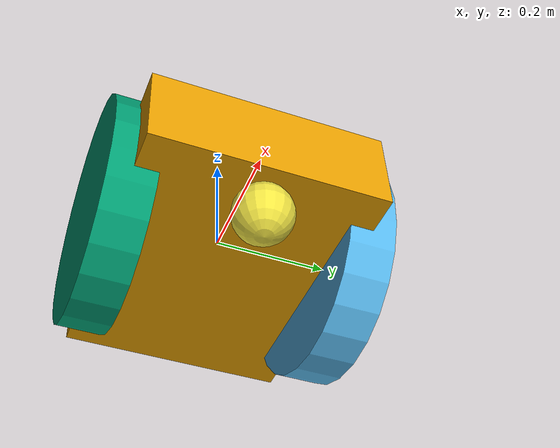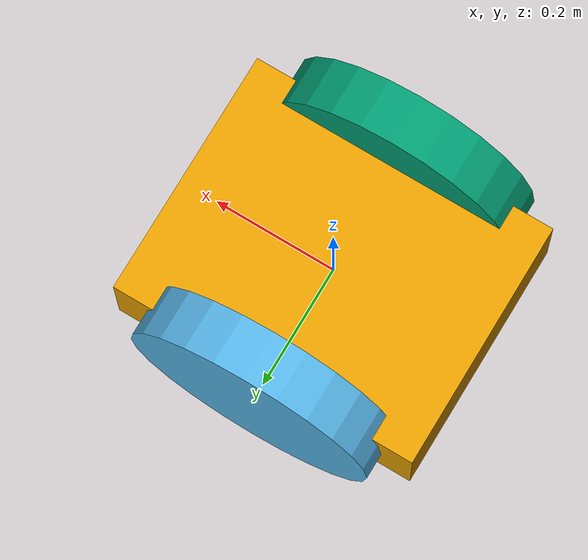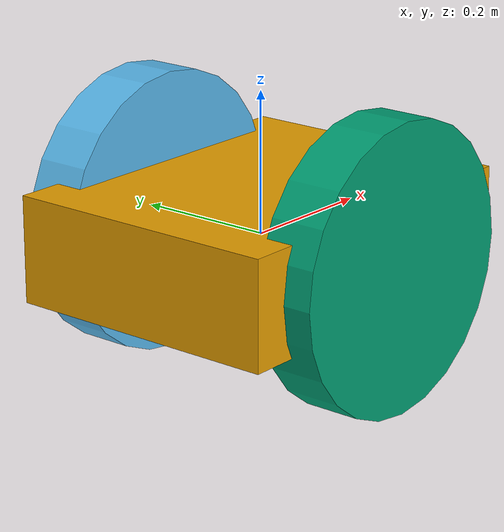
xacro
<?xml version="1.0"?>
<robot xmlns:xacro="http://www.ros.org/wiki/xacro" name="roboclaw_diff_drive">

  <!-- Xacro arguments with sensible defaults for our robot               -->
  <xacro:arg name="tcp_host"              default="192.168.68.60"/>
  <xacro:arg name="tcp_port"              default="8234"/>
  <xacro:arg name="socket_timeout"        default="0.05"/>
  <xacro:arg name="address"               default="0x80"/>

  <xacro:arg name="wheel_radius"          default="0.2"/>
  <xacro:arg name="wheel_separation"      default="0.4"/>
  <xacro:arg name="encoder_counts_per_rev" default="1000"/>
  <xacro:arg name="gear_ratio"            default="16.0"/>

  <!-- Motion strategy: duty, duty_accel, speed, speed_accel -->
  <xacro:arg name="motion_strategy"       default="duty_accel"/>
  <xacro:arg name="duty_accel_rate"       default="50000"/>
  <xacro:arg name="duty_decel_rate"       default="50000"/>
  <xacro:arg name="default_acceleration"  default="15000"/>
  <xacro:arg name="duty_max_rad_s"       default="22.5"/>
  <xacro:arg name="buffer_depth"          default="4"/>

  <xacro:arg name="auto_home_on_startup"      default="false"/>
  <xacro:arg name="position_limits_enabled"   default="false"/>

  <xacro:arg name="encoder_stuck_limit"       default="0"/>
  <xacro:arg name="encoder_runaway_limit"     default="5"/>
  <xacro:arg name="encoder_comm_fail_limit"   default="10"/>
  <xacro:arg name="encoder_max_speed_rad_s"   default="30.0"/>

  <!-- Derived properties                                                 -->
  <xacro:property name="wheel_radius"     value="$(arg wheel_radius)"/>
  <xacro:property name="wheel_separation" value="$(arg wheel_separation)"/>
  <xacro:property name="wheel_width"      value="0.08"/>
  <xacro:property name="wheel_mass"       value="1.5"/>

  <xacro:property name="base_length"      value="0.50"/>
  <xacro:property name="base_width"       value="0.40"/>
  <xacro:property name="base_height"      value="0.15"/>
  <xacro:property name="base_mass"        value="15.0"/>

  <xacro:property name="caster_radius"    value="0.05"/>
  <xacro:property name="caster_mass"      value="0.3"/>

  <!-- Links                                                              -->
  <link name="base_link">
    <visual>
      <geometry>
        <box size="${base_length} ${base_width} ${base_height}"/>
      </geometry>
    </visual>
    <collision>
      <geometry>
        <box size="${base_length} ${base_width} ${base_height}"/>
      </geometry>
    </collision>
    <inertial>
      <mass value="${base_mass}"/>
      <inertia
        ixx="${base_mass*(base_width*base_width+base_height*base_height)/12}"
        iyy="${base_mass*(base_length*base_length+base_height*base_height)/12}"
        izz="${base_mass*(base_length*base_length+base_width*base_width)/12}"
        ixy="0" ixz="0" iyz="0"/>
    </inertial>
  </link>

  <link name="left_wheel">
    <visual>
      <geometry><cylinder radius="${wheel_radius}" length="${wheel_width}"/></geometry>
    </visual>
    <collision>
      <geometry><cylinder radius="${wheel_radius}" length="${wheel_width}"/></geometry>
    </collision>
    <inertial>
      <mass value="${wheel_mass}"/>
      <inertia
        ixx="${wheel_mass*(3*wheel_radius*wheel_radius+wheel_width*wheel_width)/12}"
        iyy="${wheel_mass*(3*wheel_radius*wheel_radius+wheel_width*wheel_width)/12}"
        izz="${wheel_mass*wheel_radius*wheel_radius/2}"
        ixy="0" ixz="0" iyz="0"/>
    </inertial>
  </link>

  <link name="right_wheel">
    <visual>
      <geometry><cylinder radius="${wheel_radius}" length="${wheel_width}"/></geometry>
    </visual>
    <collision>
      <geometry><cylinder radius="${wheel_radius}" length="${wheel_width}"/></geometry>
    </collision>
    <inertial>
      <mass value="${wheel_mass}"/>
      <inertia
        ixx="${wheel_mass*(3*wheel_radius*wheel_radius+wheel_width*wheel_width)/12}"
        iyy="${wheel_mass*(3*wheel_radius*wheel_radius+wheel_width*wheel_width)/12}"
        izz="${wheel_mass*wheel_radius*wheel_radius/2}"
        ixy="0" ixz="0" iyz="0"/>
    </inertial>
  </link>

  <link name="caster_wheel">
    <visual>
      <geometry><sphere radius="${caster_radius}"/></geometry>
    </visual>
    <collision>
      <geometry><sphere radius="${caster_radius}"/></geometry>
    </collision>
    <inertial>
      <mass value="${caster_mass}"/>
      <inertia
        ixx="${2*caster_mass*caster_radius*caster_radius/5}"
        iyy="${2*caster_mass*caster_radius*caster_radius/5}"
        izz="${2*caster_mass*caster_radius*caster_radius/5}"
        ixy="0" ixz="0" iyz="0"/>
    </inertial>
  </link>

  <!-- Joints                                                             -->
  <joint name="left_wheel_joint" type="continuous">
    <parent link="base_link"/>
    <child link="left_wheel"/>
    <origin xyz="0 ${wheel_separation/2} 0" rpy="${-pi/2} 0 0"/>
    <axis xyz="0 0 1"/>
  </joint>

  <joint name="right_wheel_joint" type="continuous">
    <parent link="base_link"/>
    <child link="right_wheel"/>
    <origin xyz="0 ${-wheel_separation/2} 0" rpy="${-pi/2} 0 0"/>
    <axis xyz="0 0 1"/>
  </joint>

  <joint name="caster_wheel_joint" type="fixed">
    <parent link="base_link"/>
    <child link="caster_wheel"/>
    <origin xyz="${base_length/2-caster_radius} 0 ${-base_height/2-caster_radius}"/>
  </joint>

  <!-- ros2_control Hardware Interface                                     -->
  <ros2_control name="RoboClawSystem" type="system">
    <hardware>
      <plugin>roboclaw_hardware/RoboClawHardware</plugin>

      <param name="tcp_host">$(arg tcp_host)</param>
      <param name="tcp_port">$(arg tcp_port)</param>
      <param name="socket_timeout">$(arg socket_timeout)</param>
      <param name="address">$(arg address)</param>

      <param name="wheel_radius">$(arg wheel_radius)</param>
      <param name="wheel_separation">$(arg wheel_separation)</param>
      <param name="encoder_counts_per_rev">$(arg encoder_counts_per_rev)</param>
      <param name="gear_ratio">$(arg gear_ratio)</param>

      <param name="motion_strategy">$(arg motion_strategy)</param>
      <param name="default_acceleration">$(arg default_acceleration)</param>
      <param name="duty_accel_rate">$(arg duty_accel_rate)</param>
      <param name="duty_decel_rate">$(arg duty_decel_rate)</param>
      <param name="duty_max_rad_s">$(arg duty_max_rad_s)</param>
      <param name="buffer_depth">$(arg buffer_depth)</param>

      <param name="auto_home_on_startup">$(arg auto_home_on_startup)</param>
      <param name="position_limits_enabled">$(arg position_limits_enabled)</param>

      <param name="encoder_stuck_limit">$(arg encoder_stuck_limit)</param>
      <param name="encoder_runaway_limit">$(arg encoder_runaway_limit)</param>
      <param name="encoder_comm_fail_limit">$(arg encoder_comm_fail_limit)</param>
      <param name="encoder_max_speed_rad_s">$(arg encoder_max_speed_rad_s)</param>
    </hardware>

    <joint name="left_wheel_joint">
      <command_interface name="velocity">
        <param name="min">-50</param>
        <param name="max">50</param>
      </command_interface>
      <state_interface name="position"/>
      <state_interface name="velocity"/>
    </joint>

    <joint name="right_wheel_joint">
      <command_interface name="velocity">
        <param name="min">-50</param>
        <param name="max">50</param>
      </command_interface>
      <state_interface name="position"/>
      <state_interface name="velocity"/>
    </joint>

    <gpio name="diagnostics">
      <state_interface name="main_battery_v"/>
      <state_interface name="temperature_c"/>
      <state_interface name="error_status"/>
      <state_interface name="current_left_a"/>
      <state_interface name="current_right_a"/>
      <state_interface name="encoder_health"/>
    </gpio>
  </ros2_control>

</robot>
